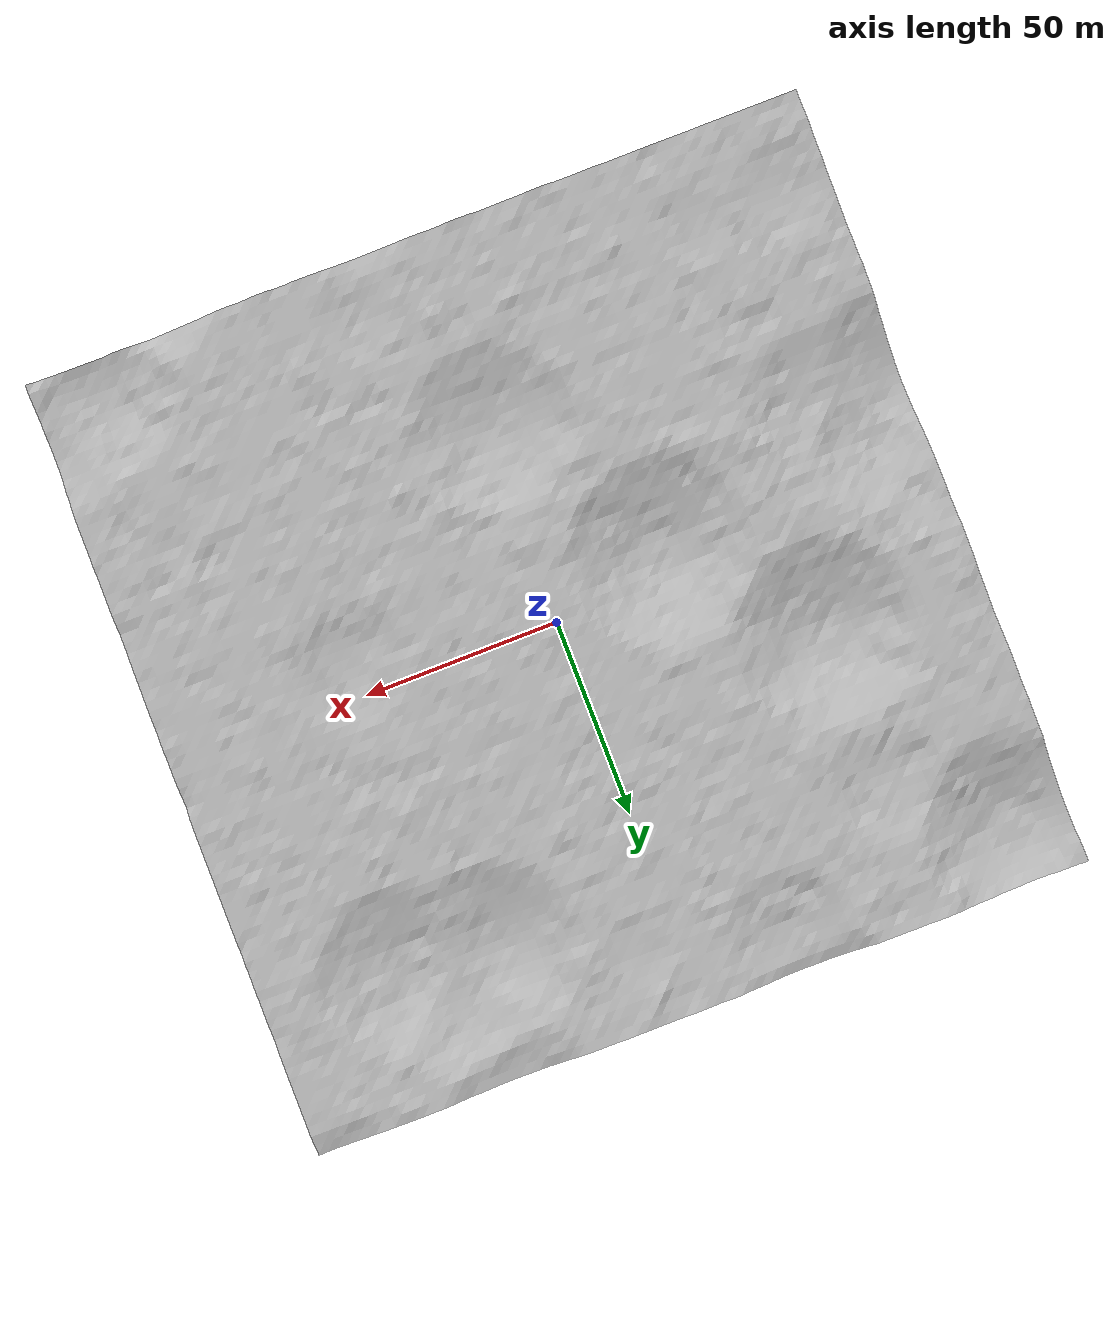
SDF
<?xml version="1.0"?>
<sdf version="1.8">
  <world name="maze_world">
    <physics name="1ms" type="ignored">
      <max_step_size>0.001</max_step_size>
      <real_time_factor>1.0</real_time_factor>
    </physics>

    <plugin filename="gz-sim-physics-system" name="gz::sim::systems::Physics" />
    <plugin filename="gz-sim-user-commands-system" name="gz::sim::systems::UserCommands" />
    <plugin filename="gz-sim-scene-broadcaster-system" name="gz::sim::systems::SceneBroadcaster" />
    <plugin filename="gz-sim-sensors-system" name="gz::sim::systems::Sensors" />

    <gravity>0 0 -1.625</gravity>

    <scene>
      <ambient>0.05 0.05 0.05 1</ambient>
      <background>0 0 0 1</background>
      <shadows>true</shadows>
    </scene>

    <!--light-->
    <light type="directional" name="sun">
      <cast_shadows>true</cast_shadows>
      <pose>0 0 10 0 0 0</pose>
      <diffuse>0.8 0.8 0.8 1</diffuse>
      <specular>0.2 0.2 0.2 1</specular>
      <attenuation>
        <range>1000</range>
        <constant>0.9</constant>
        <linear>0.01</linear>
        <quadratic>0.001</quadratic>
      </attenuation>
      <direction>-0.5 0.1 -0.9</direction>
    </light>

    <model name="lunar_terrain">
      <static>true</static>
      <link name="terrain_link">
        <collision name="collision">
          <pose> 0 0 0 1.57079632679 0 0</pose>
          <geometry>
            <mesh>
              <uri>meshes/moon.obj</uri>
            </mesh>
          </geometry>
            <surface>
              <friction>
                <ode>
                  <mu>1.0</mu>
                  <mu2>1.0</mu2>
                </ode>
              </friction>
              <contact>
                <ode>
                  <kp>1e6</kp>
                  <kd>1.0</kd>
                </ode>
              </contact>
            </surface>
        </collision>
        <visual name="visual">
          <pose> 0 0 0 1.57079632679 0 0</pose>
          <geometry>
            <mesh>
              <uri>meshes/moon.obj</uri>
            </mesh>
          </geometry>
        </visual>
      </link>
    </model>
  </world>
</sdf>
